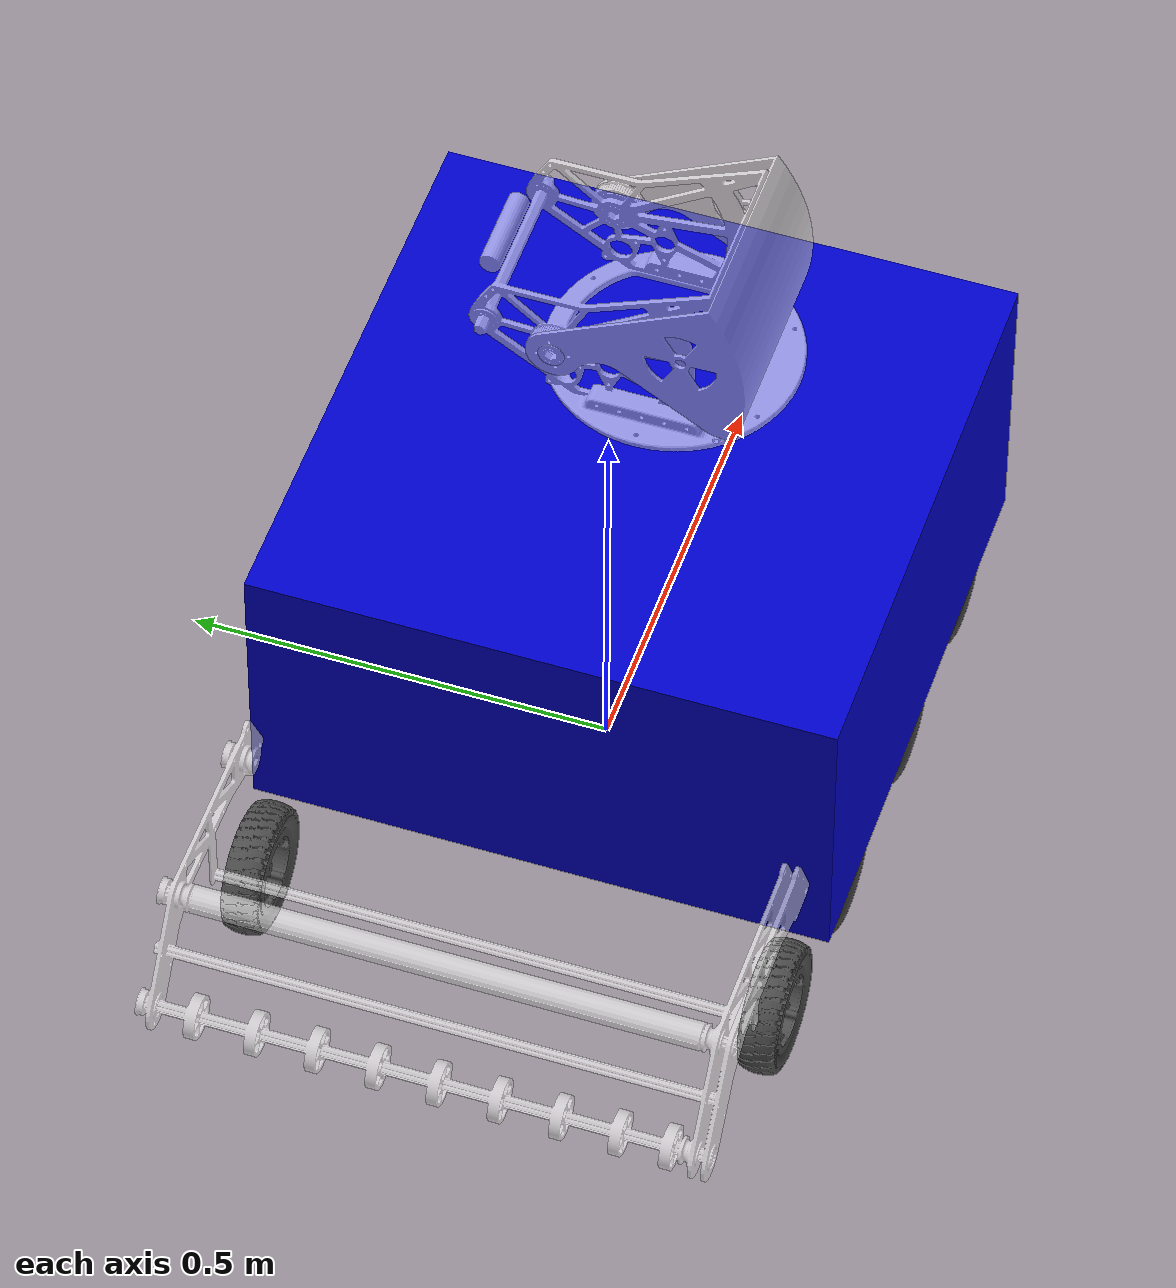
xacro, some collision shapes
<?xml version="1.0"?>
<robot xmlns:xacro="http://www.ros.org/wiki/xacro" name="robot">

  <material name="blue">
    <color rgba="0 0 0.8 1.0"/>
  </material>
  <material name="black">
    <color rgba="0.3 0.3 0.3 0.9"/>
  </material>
  <material name="white">
    <color rgba="1 1 1 0.6"/>
  </material>
  <material name="green">
    <color rgba="0 1 0"/>
  </material>

  <xacro:property name="baseLength" value="1.029" />
  <xacro:property name="baseWidth" value="0.58" />
  <xacro:property name="baseHeight" value="0.686" />

  <xacro:property name="baseMass" value="27" />
  <xacro:property name="wheelMass" value="0.453592" />

  <xacro:property name="wheelWidth" value="0.0254" />
  <xacro:property name="wheelRadius" value="0.0762" />

  <xacro:property name="wheelOffset" value="0.4" />

  <xacro:property name="camMass" value="0.05" />
  <xacro:property name="camWidth" value="0.1016" />
  <xacro:property name="camRadius" value="0.0127" />

<!-- Base -->

  <link name="base_link">
    <visual>
      <geometry>
        <mesh filename="package://robot_urdf/meshes/base.stl"/>
      </geometry>
      <origin rpy="1.57075 0 1.57075" xyz="-0.08 -0.525 0.0"/>
      <material name="blue"/>
    </visual>

    <collision>
      <geometry>
        <box size="0.68 0.68 0.36"/>
      </geometry>
      <origin rpy="0 0 0" xyz="0.1 0 0.221"/>
    </collision>

    <collision>
      <geometry>
        <box size="0.3 0.68 0.12"/>
      </geometry>
      <origin rpy="0 0 0" xyz="-0.32 0 0.1"/>
    </collision>

    <inertial>
      <mass value="${baseMass}"/>
      <inertia ixx="${(1/12) * baseMass * ((baseHeight * baseHeight) + (baseLength * baseLength))}" ixy="0.0" ixz="0.0" iyy="${(1/12) * baseMass * ((baseWidth * baseWidth) + (baseLength * baseLength))}" iyz="0.0" izz="${(1/12) * baseMass * ((baseWidth * baseWidth) + (baseHeight * baseHeight))}"/>
    </inertial>
  </link>

<!-- Right Wheels -->

  <link name="front_right_wheel">
    <visual>
      <geometry>
        <mesh filename="package://robot_urdf/meshes/wheel.stl"/>
      </geometry>
      <origin rpy="0 1.57075 1.57075" xyz="0 ${-wheelWidth/2} 0"/>
      <material name="black"/>
    </visual>
    <collision>
      <geometry>
        <cylinder length="${wheelWidth}" radius="${wheelRadius}"/>
      </geometry>
      <origin rpy="0 1.57075 1.57075" xyz="0 ${-wheelWidth/2} 0"/>
    </collision>
    <inertial>
      <mass value="${wheelMass}"/>
      <inertia ixx="0.4" ixy="0.0" ixz="0.0" iyy="0.4" iyz="0.0" izz="0.2"/>
    </inertial>
  </link>

  <joint name="base_to_front_right_wheel" type="fixed">
    <parent link="base_link"/>
    <child link="front_right_wheel"/>
    <axis xyz="0 1 0"/>
    <origin xyz="0.315 ${-baseWidth /2} 0.028"/>
  </joint>

  <link name="front_middle_right_wheel">
    <visual>
      <geometry>
        <mesh filename="package://robot_urdf/meshes/wheel.stl"/>
      </geometry>
      <origin rpy="0 1.57075 1.57075" xyz="0 ${-wheelWidth/2} 0"/>
      <material name="black"/>
    </visual>
    <collision>
      <geometry>
        <cylinder length="${wheelWidth}" radius="${wheelRadius}"/>
      </geometry>
      <origin rpy="0 1.57075 1.57075" xyz="0 ${-wheelWidth/2} 0"/>
    </collision>
    <inertial>
      <mass value="${wheelMass}"/>
      <inertia ixx="0.4" ixy="0.0" ixz="0.0" iyy="0.4" iyz="0.0" izz="0.2"/>
    </inertial>
  </link>

  <joint name="base_to_front_middle_right_wheel" type="fixed">
    <parent link="base_link"/>
    <child link="front_middle_right_wheel"/>
    <axis xyz="0 1 0"/>
    <origin xyz="0.104 ${-baseWidth /2} 0.022"/>
  </joint>

  <link name="back_middle_right_wheel">
    <visual>
      <geometry>
        <mesh filename="package://robot_urdf/meshes/wheel.stl"/>
      </geometry>
      <origin rpy="0 1.57075 1.57075" xyz="0 ${-wheelWidth/2} 0"/>
      <material name="black"/>
    </visual>
    <collision>
      <geometry>
        <cylinder length="${wheelWidth}" radius="${wheelRadius}"/>
      </geometry>
      <origin rpy="0 1.57075 1.57075" xyz="0 ${-wheelWidth/2} 0"/>
    </collision>
    <inertial>
      <mass value="${wheelMass}"/>
      <inertia ixx="0.4" ixy="0.0" ixz="0.0" iyy="0.4" iyz="0.0" izz="0.2"/>
    </inertial>
  </link>

  <joint name="base_to_back_middle_right_wheel" type="fixed">
    <parent link="base_link"/>
    <child link="back_middle_right_wheel"/>
    <axis xyz="0 1 0"/>
    <origin xyz="-0.122 ${-baseWidth /2} 0.022"/>
  </joint>

  <link name="back_right_wheel">
    <visual>
      <geometry>
        <mesh filename="package://robot_urdf/meshes/wheel.stl"/>
      </geometry>
      <origin rpy="0 1.57075 1.57075" xyz="0 ${-wheelWidth/2} 0"/>
      <material name="black"/>
    </visual>
    <collision>
      <geometry>
        <cylinder length="${wheelWidth}" radius="${wheelRadius}"/>
      </geometry>
      <origin rpy="0 1.57075 1.57075" xyz="0 ${-wheelWidth/2} 0"/>
    </collision>
    <inertial>
      <mass value="${wheelMass}"/>
      <inertia ixx="0.4" ixy="0.0" ixz="0.0" iyy="0.4" iyz="0.0" izz="0.2"/>
    </inertial>
  </link>

  <joint name="base_to_back_right_wheel" type="fixed">
    <parent link="base_link"/>
    <child link="back_right_wheel"/>
    <axis xyz="0 1 0"/>
    <origin xyz="-0.334 ${-baseWidth /2} 0.028"/>
  </joint>

<!-- Left Wheels -->

  <link name="front_left_wheel">
    <visual>
      <geometry>
        <mesh filename="package://robot_urdf/meshes/wheel.stl"/>
      </geometry>
      <origin rpy="0 1.57075 1.57075" xyz="0 ${wheelWidth/2} 0"/>
      <material name="black"/>
    </visual>
    <collision>
      <geometry>
        <cylinder length="${wheelWidth}" radius="${wheelRadius}"/>
      </geometry>
      <origin rpy="0 1.57075 1.57075" xyz="0 ${wheelWidth/2} 0"/>
    </collision>
    <inertial>
      <mass value="${wheelMass}"/>
      <inertia ixx="0.4" ixy="0.0" ixz="0.0" iyy="0.4" iyz="0.0" izz="0.2"/>
    </inertial>
  </link>

  <joint name="base_to_front_left_wheel" type="fixed">
    <parent link="base_link"/>
    <child link="front_left_wheel"/>
    <axis xyz="0 1 0"/>
    <origin xyz="0.315 ${baseWidth /2} 0.028"/>
  </joint>

  <link name="front_middle_left_wheel">
    <visual>
      <geometry>
        <mesh filename="package://robot_urdf/meshes/wheel.stl"/>
      </geometry>
      <origin rpy="0 1.57075 1.57075" xyz="0 ${wheelWidth/2} 0"/>
      <material name="black"/>
    </visual>
    <collision>
      <geometry>
        <cylinder length="${wheelWidth}" radius="${wheelRadius}"/>
      </geometry>
      <origin rpy="0 1.57075 1.57075" xyz="0 ${wheelWidth/2} 0"/>
    </collision>
    <inertial>
      <mass value="${wheelMass}"/>
      <inertia ixx="0.4" ixy="0.0" ixz="0.0" iyy="0.4" iyz="0.0" izz="0.2"/>
    </inertial>
  </link>

  <joint name="base_to_front_middle_left_wheel" type="fixed">
    <parent link="base_link"/>
    <child link="front_middle_left_wheel"/>
    <axis xyz="0 1 0"/>
    <origin xyz="0.104 ${baseWidth /2} 0.022"/>
  </joint>

  <link name="back_middle_left_wheel">
    <visual>
      <geometry>
        <mesh filename="package://robot_urdf/meshes/wheel.stl"/>
      </geometry>
      <origin rpy="0 1.57075 1.57075" xyz="0 ${wheelWidth/2} 0"/>
      <material name="black"/>
    </visual>
    <collision>
      <geometry>
        <cylinder length="${wheelWidth}" radius="${wheelRadius}"/>
      </geometry>
      <origin rpy="0 1.57075 1.57075" xyz="0 ${wheelWidth/2} 0"/>
    </collision>
    <inertial>
      <mass value="${wheelMass}"/>
      <inertia ixx="0.4" ixy="0.0" ixz="0.0" iyy="0.4" iyz="0.0" izz="0.2"/>
    </inertial>
  </link>

  <joint name="base_to_back_middle_left_wheel" type="fixed">
    <parent link="base_link"/>
    <child link="back_middle_left_wheel"/>
    <axis xyz="0 1 0"/>
    <origin xyz="-0.122 ${baseWidth /2} 0.022"/>
  </joint>

  <link name="back_left_wheel">
    <visual>
      <geometry>
        <mesh filename="package://robot_urdf/meshes/wheel.stl"/>
      </geometry>
      <origin rpy="0 1.57075 1.57075" xyz="0 ${wheelWidth/2} 0"/>
      <material name="black"/>
    </visual>
    <collision>
      <geometry>
        <cylinder length="${wheelWidth}" radius="${wheelRadius}"/>
      </geometry>
      <origin rpy="0 1.57075 1.57075" xyz="0 ${wheelWidth/2} 0"/>
    </collision>
    <inertial>
      <mass value="${wheelMass}"/>
      <inertia ixx="0.4" ixy="0.0" ixz="0.0" iyy="0.4" iyz="0.0" izz="0.2"/>
    </inertial>
  </link>

  <joint name="base_to_back_left_wheel" type="fixed">
    <parent link="base_link"/>
    <child link="back_left_wheel"/>
    <axis xyz="0 1 0"/>
    <origin xyz="-0.334 ${baseWidth /2} 0.028"/>
  </joint>

  <!-- Intake -->

  <link name="intake_link">
    <visual>
      <geometry>
        <mesh filename="package://robot_urdf/meshes/intake.stl"/>
      </geometry>
      <origin rpy="3.14159265 0 0" xyz="-0.272 0.506 0.288"/>
      <material name="white"/>
    </visual>

    <collision>
      <geometry>
        <box size="0.36 0.63 0.09"/>
      </geometry>
      <origin rpy="0 0 0" xyz="-0.17 0 0.015"/>
    </collision>

    <collision>
      <geometry>
        <box size="0.1 0.63 0.13"/>
      </geometry>
      <origin rpy="0 0 0" xyz="-0.3 0 -0.03"/>
    </collision>

    <inertial>
      <mass value="${wheelMass}"/>
      <inertia ixx="0.4" ixy="0.0" ixz="0.0" iyy="0.4" iyz="0.0" izz="0.2"/>
    </inertial>
  </link>

  <joint name="intake_to_base_link" type="continuous">
    <parent link="base_link"/>
    <child link="intake_link"/>
    <axis xyz="0 1 0"/>
    <origin xyz="-0.296 0 0.2"/>
  </joint>

  <!-- Turret -->

  <link name="turret_link">
    <visual>
      <geometry>
        <mesh filename="package://robot_urdf/meshes/turret.stl"/>
      </geometry>
      <origin rpy="1.57075 0 -1.57075" xyz="0.23 0.12 -0.12"/>
      <material name="white"/>
    </visual>
    <collision>
      <geometry>
        <box size="0.3 0.3 0.2"/>
      </geometry>
      <origin rpy="0 0 0" xyz="0 0.05 0.15"/>
    </collision>
    <inertial>
      <mass value="${wheelMass}"/>
      <inertia ixx="0.4" ixy="0.0" ixz="0.0" iyy="0.4" iyz="0.0" izz="0.2"/>
    </inertial>
  </link>

  <joint name="turret_to_base_link" type="continuous">
    <parent link="base_link"/>
    <child link="turret_link"/>
    <axis xyz="0 0 1"/>
    <origin rpy="0 0 1.57075" xyz="0.232 0 0.38"/>
  </joint>

<!-- Hood -->
  <link name="hood_link">
    <visual>
      <geometry>
        <mesh filename="package://robot_urdf/meshes/hood.stl"/>
      </geometry>
      <origin xyz="0.222 0.12 -0.143" rpy="2.059442 0 -1.57075"/>
      <material name="white"/>
    </visual>
    <inertial>
      <mass value="${wheelMass}"/>
      <inertia ixx="0.4" ixy="0.0" ixz="0.0" iyy="0.4" iyz="0.0" izz="0.2"/>
    </inertial>
  </link>

  <joint name="hood_to_turret" type="continuous">
    <parent link="turret_link"/>
    <child link="hood_link"/>
    <axis xyz="0 1 0"/>
    <origin rpy="0 0.488692 0" xyz="0.1 0 0.11"/>
  </joint>

  <link name="shoot_angle_link">
    <inertial>
      <mass value="${wheelMass}"/>
      <inertia ixx="0.4" ixy="0.0" ixz="0.0" iyy="0.4" iyz="0.0" izz="0.2"/>
    </inertial>
  </link>

  <joint name="shoot_angle_to_hood" type="fixed">
    <parent link="hood_link"/>
    <child link="shoot_angle_link"/>
    <axis xyz="0 1 0"/>
    <origin rpy="0 -1.57075 0" xyz="-0.23 0 0.03"/>
  </joint>

<!-- Flywheel -->
  <link name="flywheel_link">
    <inertial>
      <mass value="${wheelMass}"/>
      <inertia ixx="0.4" ixy="0.0" ixz="0.0" iyy="0.4" iyz="0.0" izz="0.2"/>
    </inertial>
  </link>

  <joint name="flywheel_to_turret" type="fixed">
    <parent link="turret_link"/>
    <child link="flywheel_link"/>
    <axis xyz="0 1 0"/>
    <origin rpy="0 0.0 0" xyz="0.05 0 0.11"/>
  </joint>

  <!-- Sensors -->

  <link name="t265_frame">
    <visual>
      <geometry>
        <cylinder length="${camWidth}" radius="${camRadius}"/>
      </geometry>
      <origin rpy="0 1.57075 1.57075" xyz="0 0 0"/>
      <material name="white"/>
    </visual>
    <collision>
      <geometry>
        <cylinder length="${camWidth}" radius="${camRadius}"/>
      </geometry>
      <origin rpy="0 1.57075 1.57075" xyz="0 0 0"/>
    </collision>
    <inertial>
      <mass value="${camMass}"/>
      <inertia ixx="0.4" ixy="0.0" ixz="0.0" iyy="0.4" iyz="0.0" izz="0.2"/>
    </inertial>
  </link>

  <joint name="base_to_t265_frame" type="fixed">
    <parent link="base_link"/>
    <child link="t265_frame"/>
    <axis xyz="0 1 0"/>
    <origin xyz="0.42545 0 0.33"/>
  </joint>

  <link name="d435_link">
    <visual>
      <geometry>
        <cylinder length="${camWidth}" radius="${camRadius}"/>
      </geometry>
      <origin rpy="0 1.57075 1.57075" xyz="0 0 0"/>
      <material name="white"/>
    </visual>
    <collision>
      <geometry>
        <cylinder length="${camWidth}" radius="${camRadius}"/>
      </geometry>
      <origin rpy="0 1.57075 1.57075" xyz="0 0 0"/>
    </collision>
    <inertial>
      <mass value="${camMass}"/>
      <inertia ixx="0.4" ixy="0.0" ixz="0.0" iyy="0.4" iyz="0.0" izz="0.2"/>
    </inertial>
  </link>

  <joint name="turret_to_d435_link" type="fixed">
    <parent link="turret_link"/>
    <child link="d435_link"/>
    <axis xyz="0 1 0"/>
    <origin rpy="0 -0.523599 0" xyz="0.2 0.0 0.15"/>
  </joint>

</robot>
